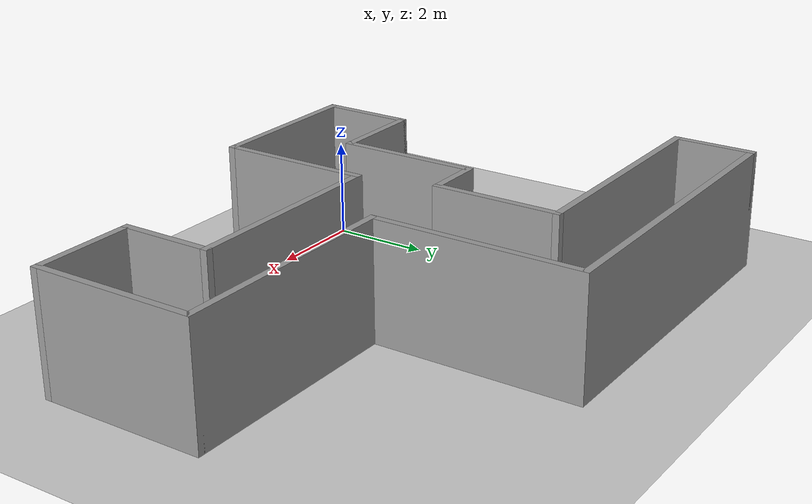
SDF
<sdf version="1.7">
 <world name="default">
  <light name="sun" type="directional">
   <pose>0 0 10 0 -0 0</pose>
   <diffuse>0.8 0.8 0.8 1</diffuse>
   <specular>0.2 0.2 0.2 1</specular>
   <attenuation>
    <range>1000</range>
    <constant>0.9</constant>
    <linear>0.01</linear>
    <quadratic>0.001</quadratic>
   </attenuation>
   <direction>-0.5 0.1 -0.9</direction>
   <spot><inner_angle>0</inner_angle><outer_angle>0</outer_angle><falloff>0</falloff></spot>
  </light>
  <model name="ground_plane">
   <static>1</static>
   <link name="link">
    <collision name="collision">
     <geometry><plane><normal>0 0 1</normal><size>100 100</size></plane></geometry>
     <surface>
      <contact><collide_bitmask>65535</collide_bitmask></contact>
      <friction><ode><mu>100</mu><mu2>50</mu2></ode></friction>
     </surface>
    </collision>
    <visual name="visual">
     <cast_shadows>0</cast_shadows>
     <geometry><plane><normal>0 0 1</normal><size>100 100</size></plane></geometry>
     <material>
      <script><uri>file://media/materials/scripts/gazebo.material</uri><name>Gazebo/Grey</name></script>
     </material>
    </visual>
   </link>
  </model>
  <gravity>0 0 -9.8</gravity>
  <magnetic_field>6e-06 2.3e-05 -4.2e-05</magnetic_field>
  <atmosphere type="adiabatic"/>
  <physics type="ode">
   <max_step_size>0.001</max_step_size>
   <real_time_factor>1</real_time_factor>
   <real_time_update_rate>1000</real_time_update_rate>
  </physics>
  <scene><ambient>0.4 0.4 0.4 1</ambient><background>0.7 0.7 0.7 1</background><shadows>1</shadows></scene>
  <audio><device>default</device></audio>
  <spherical_coordinates>
   <surface_model>EARTH_WGS84</surface_model>
   <latitude_deg>0</latitude_deg>
   <longitude_deg>0</longitude_deg>
   <elevation>0</elevation>
   <heading_deg>0</heading_deg>
  </spherical_coordinates>
  <model name="map5">
   <pose>2.9415 4.58806 0 0 -0 0</pose>
   <link name="Wall_0">
    <collision name="Wall_0_Collision">
     <geometry><box><size>1.75 0.15 2.5</size></box></geometry>
     <pose>0 0 1.25 0 -0 0</pose>
    </collision>
    <visual name="Wall_0_Visual">
     <pose>0 0 1.25 0 -0 0</pose>
     <geometry><box><size>1.75 0.15 2.5</size></box></geometry>
     <material>
      <script><uri>file://media/materials/scripts/gazebo.material</uri><name>Gazebo/Grey</name></script>
      <ambient>1 1 1 1</ambient>
     </material>
     <meta><layer>0</layer></meta>
    </visual>
    <pose>-5.97494 2.6875 0 0 -0 1.5708</pose>
   </link>
   <link name="Wall_1">
    <collision name="Wall_1_Collision">
     <geometry><box><size>7.25 0.15 2.5</size></box></geometry>
     <pose>0 0 1.25 0 -0 0</pose>
    </collision>
    <visual name="Wall_1_Visual">
     <pose>0 0 1.25 0 -0 0</pose>
     <geometry><box><size>7.25 0.15 2.5</size></box></geometry>
     <material>
      <script><uri>file://media/materials/scripts/gazebo.material</uri><name>Gazebo/Grey</name></script>
      <ambient>1 1 1 1</ambient>
     </material>
     <meta><layer>0</layer></meta>
    </visual>
    <pose>-2.42494 3.4875 0 0 -0 0</pose>
   </link>
   <link name="Wall_10">
    <collision name="Wall_10_Collision">
     <geometry><box><size>2 0.15 2.5</size></box></geometry>
     <pose>0 0 1.25 0 -0 0</pose>
    </collision>
    <visual name="Wall_10_Visual">
     <pose>0 0 1.25 0 -0 0</pose>
     <geometry><box><size>2 0.15 2.5</size></box></geometry>
     <material>
      <script><uri>file://media/materials/scripts/gazebo.material</uri><name>Gazebo/Grey</name></script>
      <ambient>1 1 1 1</ambient>
     </material>
     <meta><layer>0</layer></meta>
    </visual>
    <pose>-3.82494 -4.5375 0 0 -0 1.5708</pose>
   </link>
   <link name="Wall_11">
    <collision name="Wall_11_Collision">
     <geometry><box><size>2 0.15 2.5</size></box></geometry>
     <pose>0 0 1.25 0 -0 0</pose>
    </collision>
    <visual name="Wall_11_Visual">
     <pose>0 0 1.25 0 -0 0</pose>
     <geometry><box><size>2 0.15 2.5</size></box></geometry>
     <material>
      <script><uri>file://media/materials/scripts/gazebo.material</uri><name>Gazebo/Grey</name></script>
      <ambient>1 1 1 1</ambient>
     </material>
     <meta><layer>0</layer></meta>
    </visual>
    <pose>-2.89994 -3.6125 0 0 -0 0</pose>
   </link>
   <link name="Wall_12">
    <collision name="Wall_12_Collision">
     <geometry><box><size>3 0.15 2.5</size></box></geometry>
     <pose>0 0 1.25 0 -0 0</pose>
    </collision>
    <visual name="Wall_12_Visual">
     <pose>0 0 1.25 0 -0 0</pose>
     <geometry><box><size>3 0.15 2.5</size></box></geometry>
     <material>
      <script><uri>file://media/materials/scripts/gazebo.material</uri><name>Gazebo/Grey</name></script>
      <ambient>1 1 1 1</ambient>
     </material>
     <meta><layer>0</layer></meta>
    </visual>
    <pose>-1.97494 -2.1875 0 0 -0 1.5708</pose>
   </link>
   <link name="Wall_13">
    <collision name="Wall_13_Collision">
     <geometry><box><size>1.25 0.15 2.5</size></box></geometry>
     <pose>0 0 1.25 0 -0 0</pose>
    </collision>
    <visual name="Wall_13_Visual">
     <pose>0 0 1.25 0 -0 0</pose>
     <geometry><box><size>1.25 0.15 2.5</size></box></geometry>
     <material>
      <script><uri>file://media/materials/scripts/gazebo.material</uri><name>Gazebo/Grey</name></script>
      <ambient>1 1 1 1</ambient>
     </material>
     <meta><layer>0</layer></meta>
    </visual>
    <pose>-1.42494 -0.7625 0 0 -0 0</pose>
   </link>
   <link name="Wall_14">
    <collision name="Wall_14_Collision">
     <geometry><box><size>2.75 0.15 2.5</size></box></geometry>
     <pose>0 0 1.25 0 -0 0</pose>
    </collision>
    <visual name="Wall_14_Visual">
     <pose>0 0 1.25 0 -0 0</pose>
     <geometry><box><size>2.75 0.15 2.5</size></box></geometry>
     <material>
      <script><uri>file://media/materials/scripts/gazebo.material</uri><name>Gazebo/Grey</name></script>
      <ambient>1 1 1 1</ambient>
     </material>
     <meta><layer>0</layer></meta>
    </visual>
    <pose>-0.874939 0.5375 0 0 -0 1.5708</pose>
   </link>
   <link name="Wall_15">
    <collision name="Wall_15_Collision">
     <geometry><box><size>5.25024 0.15 2.5</size></box></geometry>
     <pose>0 0 1.25 0 -0 0</pose>
    </collision>
    <visual name="Wall_15_Visual">
     <pose>0 0 1.25 0 -0 0</pose>
     <geometry><box><size>5.25024 0.15 2.5</size></box></geometry>
     <material>
      <script><uri>file://media/materials/scripts/gazebo.material</uri><name>Gazebo/Grey</name></script>
      <ambient>1 1 1 1</ambient>
     </material>
     <meta><layer>0</layer></meta>
    </visual>
    <pose>-3.42494 1.8375 0 0 -0 3.14159</pose>
   </link>
   <link name="Wall_2">
    <collision name="Wall_2_Collision">
     <geometry><box><size>4.5 0.15 2.5</size></box></geometry>
     <pose>0 0 1.25 0 -0 0</pose>
    </collision>
    <visual name="Wall_2_Visual">
     <pose>0 0 1.25 0 -0 0</pose>
     <geometry><box><size>4.5 0.15 2.5</size></box></geometry>
     <material>
      <script><uri>file://media/materials/scripts/gazebo.material</uri><name>Gazebo/Grey</name></script>
      <ambient>1 1 1 1</ambient>
     </material>
     <meta><layer>0</layer></meta>
    </visual>
    <pose>1.12506 1.3125 0 0 -0 -1.5708</pose>
   </link>
   <link name="Wall_3">
    <collision name="Wall_3_Collision">
     <geometry><box><size>5 0.15 2.5</size></box></geometry>
     <pose>0 0 1.25 0 -0 0</pose>
    </collision>
    <visual name="Wall_3_Visual">
     <pose>0 0 1.25 0 -0 0</pose>
     <geometry><box><size>5 0.15 2.5</size></box></geometry>
     <material>
      <script><uri>file://media/materials/scripts/gazebo.material</uri><name>Gazebo/Grey</name></script>
      <ambient>1 1 1 1</ambient>
     </material>
     <meta><layer>0</layer></meta>
    </visual>
    <pose>3.55006 -0.8625 0 0 -0 0</pose>
   </link>
   <link name="Wall_4">
    <collision name="Wall_4_Collision">
     <geometry><box><size>3.5 0.15 2.5</size></box></geometry>
     <pose>0 0 1.25 0 -0 0</pose>
    </collision>
    <visual name="Wall_4_Visual">
     <pose>0 0 1.25 0 -0 0</pose>
     <geometry><box><size>3.5 0.15 2.5</size></box></geometry>
     <material>
      <script><uri>file://media/materials/scripts/gazebo.material</uri><name>Gazebo/Grey</name></script>
      <ambient>1 1 1 1</ambient>
     </material>
     <meta><layer>0</layer></meta>
    </visual>
    <pose>5.97506 -2.5375 0 0 -0 -1.5708</pose>
   </link>
   <link name="Wall_5">
    <collision name="Wall_5_Collision">
     <geometry><box><size>2.25 0.15 2.5</size></box></geometry>
     <pose>0 0 1.25 0 -0 0</pose>
    </collision>
    <visual name="Wall_5_Visual">
     <pose>0 0 1.25 0 -0 0</pose>
     <geometry><box><size>2.25 0.15 2.5</size></box></geometry>
     <material>
      <script><uri>file://media/materials/scripts/gazebo.material</uri><name>Gazebo/Grey</name></script>
      <ambient>1 1 1 1</ambient>
     </material>
     <meta><layer>0</layer></meta>
    </visual>
    <pose>4.92506 -4.2125 0 0 -0 3.14159</pose>
   </link>
   <link name="Wall_6">
    <collision name="Wall_6_Collision">
     <geometry><box><size>2 0.15 2.5</size></box></geometry>
     <pose>0 0 1.25 0 -0 0</pose>
    </collision>
    <visual name="Wall_6_Visual">
     <pose>0 0 1.25 0 -0 0</pose>
     <geometry><box><size>2 0.15 2.5</size></box></geometry>
     <material>
      <script><uri>file://media/materials/scripts/gazebo.material</uri><name>Gazebo/Grey</name></script>
      <ambient>1 1 1 1</ambient>
     </material>
     <meta><layer>0</layer></meta>
    </visual>
    <pose>3.87506 -3.2875 0 0 -0 1.5708</pose>
   </link>
   <link name="Wall_7">
    <collision name="Wall_7_Collision">
     <geometry><box><size>4.5 0.15 2.5</size></box></geometry>
     <pose>0 0 1.25 0 -0 0</pose>
    </collision>
    <visual name="Wall_7_Visual">
     <pose>0 0 1.25 0 -0 0</pose>
     <geometry><box><size>4.5 0.15 2.5</size></box></geometry>
     <material>
      <script><uri>file://media/materials/scripts/gazebo.material</uri><name>Gazebo/Grey</name></script>
      <ambient>1 1 1 1</ambient>
     </material>
     <meta><layer>0</layer></meta>
    </visual>
    <pose>1.70006 -2.3625 0 0 -0 3.14159</pose>
   </link>
   <link name="Wall_8">
    <collision name="Wall_8_Collision">
     <geometry><box><size>3.25 0.15 2.5</size></box></geometry>
     <pose>0 0 1.25 0 -0 0</pose>
    </collision>
    <visual name="Wall_8_Visual">
     <pose>0 0 1.25 0 -0 0</pose>
     <geometry><box><size>3.25 0.15 2.5</size></box></geometry>
     <material>
      <script><uri>file://media/materials/scripts/gazebo.material</uri><name>Gazebo/Grey</name></script>
      <ambient>1 1 1 1</ambient>
     </material>
     <meta><layer>0</layer></meta>
    </visual>
    <pose>-0.474939 -3.9125 0 0 -0 -1.5708</pose>
   </link>
   <link name="Wall_9">
    <collision name="Wall_9_Collision">
     <geometry><box><size>3.5 0.15 2.5</size></box></geometry>
     <pose>0 0 1.25 0 -0 0</pose>
    </collision>
    <visual name="Wall_9_Visual">
     <pose>0 0 1.25 0 -0 0</pose>
     <geometry><box><size>3.5 0.15 2.5</size></box></geometry>
     <material>
      <script><uri>file://media/materials/scripts/gazebo.material</uri><name>Gazebo/Grey</name></script>
      <ambient>1 1 1 1</ambient>
     </material>
     <meta><layer>0</layer></meta>
    </visual>
    <pose>-2.14994 -5.4625 0 0 -0 3.14159</pose>
   </link>
   <static>1</static>
  </model>
 </world>
</sdf>
